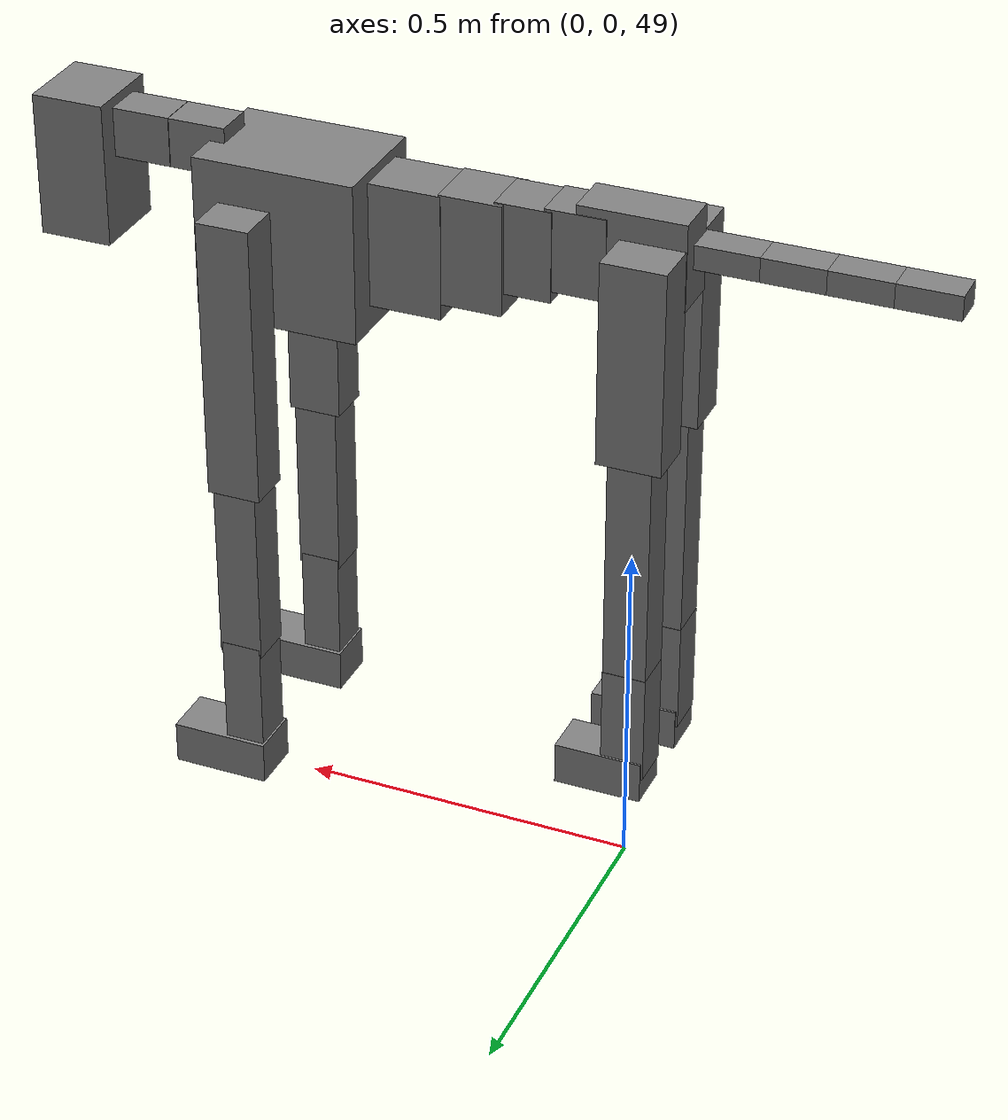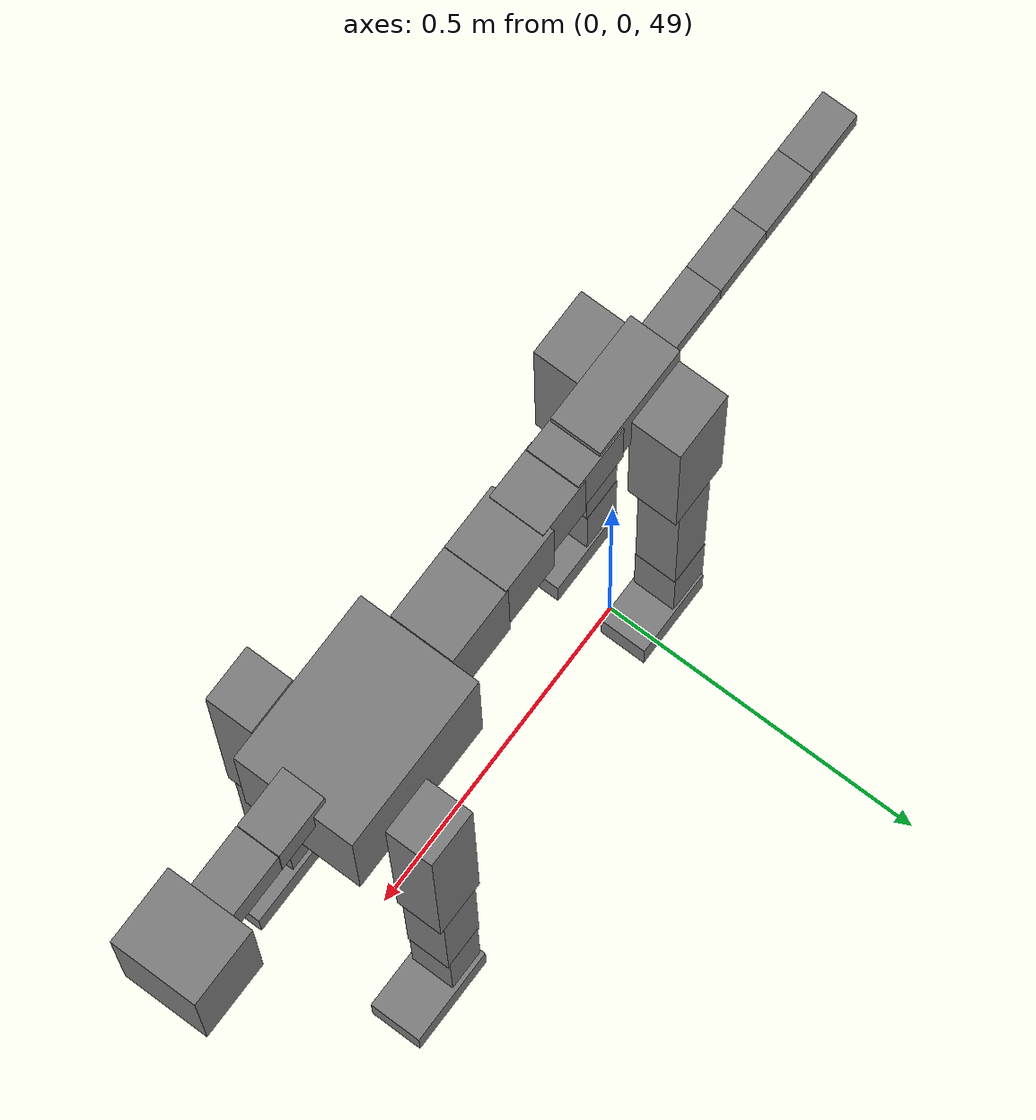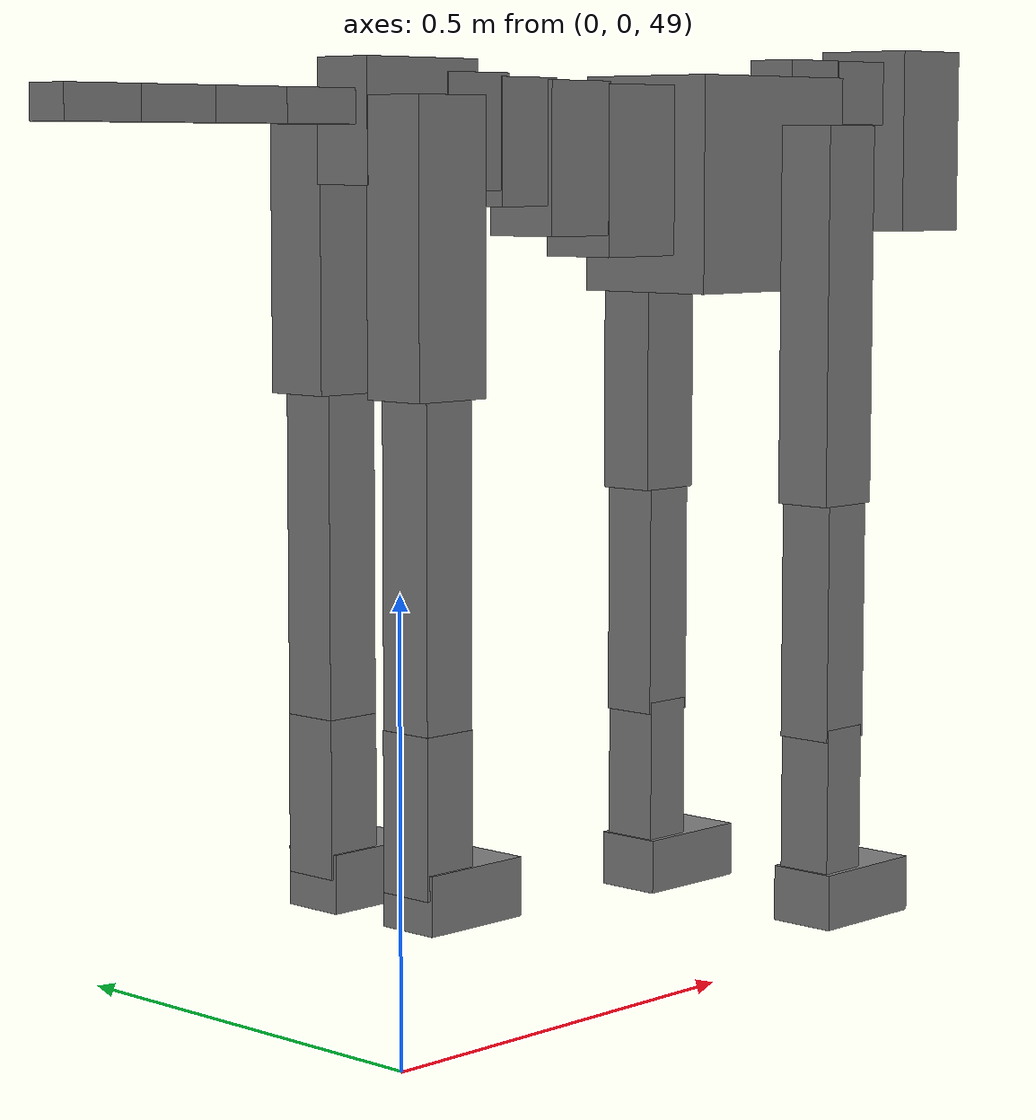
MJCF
<mujoco model="dog">

    <default>
        <joint armature="0.02" stiffness="1" damping="0.2" limited="true" />
        <geom condim="3" friction="1 0.05 0.05" margin="0.01" />
        <motor ctrllimited="true" ctrlrange="-1.0 1.0" forcelimited="true" gear="50" />
    </default>

    <compiler inertiafromgeom="true" angle="radian" />

    <option timestep="0.016" iterations="50" tolerance="1e-10" solver="Newton" jacobian="dense" cone="pyramidal" />

    <size nconmax="20000" njmax="60000" nstack="5000000" />
    <visual>
        <map force="0.1" zfar="30" />
        <rgba haze="0.15 0.25 0.35 1" />
        <quality shadowsize="2048" />
        <global offwidth="800" offheight="800" />
    </visual>

    <asset>
        <texture type="skybox" builtin="gradient" rgb1="0.3 0.5 0.7" rgb2="0 0 0" width="512" height="512" />
        <texture name="texplane" type="2d" builtin="checker" rgb1=".2 .3 .4" rgb2=".1 0.15 0.2" width="512" height="512" mark="cross" markrgb=".8 .8 .8" />
        <texture name="texgeom" type="cube" builtin="flat" mark="cross" width="127" height="1278" rgb1="0.8 0.6 0.4" rgb2="0.8 0.6 0.4" markrgb="1 1 1" random="0.01" />

        <material name="matplane" reflectance="0.3" texture="texplane" texrepeat="1 1" texuniform="true" />
        <material name="matgeom" texture="texgeom" texuniform="true" rgba="0.8 0.6 .4 1" />
    </asset>

    <worldbody>
        <geom name="floor" pos="0 0 0" size="0 0 .25" type="plane" material="matplane" condim="3" />

        <light directional="false" diffuse=".2 .2 .2" specular="0 0 0" pos="0 0 5" dir="0 0 -1" castshadow="false" />
        <light mode="targetbodycom" target="torso" directional="false" diffuse=".8 .8 .8" specular="0.3 0.3 0.3" pos="0 0 4.0" dir="0 0 -1" />

        <body name="root" pos="0 0 50">
            <freejoint name="root_1" />
            <geom type="box" pos="0 0 -0.02" size="0.0774  0.0358  0.063" density="2030" />

            <body name="spine1" pos="0.054 0 0">
                <joint name="spine1_y" axis="0 1 0" range="0 0.7" limited="true" />
                <geom type="box" pos="0.02375 0 -0.03" size="0.04375  0.0375  0.05985" density="2030" />

                <body name="spine2" pos="0.0612 0 0">
                    <joint name="spine2_y" axis="0 1 0" range="-0.15 0.15" limited="true" />
                    <geom type="box" pos="0.03555  0  -0.04" size="0.04055  0.039  0.06615" density="2030" />

                    <body name="spine3" pos="0.0730 0 0">
                        <joint name="spine3_y" axis="0 1 0" range="-0.15 0.15" limited="true" />
                        <geom type="box" pos="0.03555  0  -0.057" size="0.04555  0.0445  0.081" density="2030" />

                        <body name="spine4" pos="0.0780 0 0">
                            <joint name="spine4_y" axis="0 1 0" range="-0.15 0.15" limited="true" />
                            <geom type="box" pos="0.05265  0  -0.07" size="0.05265  0.045  0.09135" density="2030" />

                            <body name="torso" pos="0.1082 0 0">
                                <joint name="torso_y" axis="0 1 0" range="-0.15 0.15" limited="true" />
                                <geom type="box" pos="0.11925  0  -0.085" size="0.11925  0.085  0.11745" density="2030" />

                                <body name="neck1" pos="0.2160  0   0.0180">
                                    <joint name="neck1_y" axis="0 1 0" range="-1.2  -1" limited="true" />
                                    <geom type="box" pos="0.0423  0  0" size="0.0423  0.03  0.036" density="2325" />

                                    <body name="neck2" pos="0.0853  0  0">
                                        <joint name="neck2_y" axis="0 1 0" range="0.1  0" limited="true" />
                                        <geom type="box" pos="0.0423  0  0" size="0.0423  0.03  0.036" density="2325" />

                                        <body name="head" pos="0.0853  0  0">
                                            <joint name="head_y" axis="0 1 0" range="-0.3  -0.2" limited="true" />
                                            <geom type="box" pos="0.0531  0  -0.055" size="0.0531  0.06  0.1044" density="4030" />

                                        </body>
                                    </body>
                                </body>

                                <body name="front_shoulder" pos="0.156  0   -0.0480">
                                    <joint name="front_shoulder_y" axis="0 1 0" range="-1 1.5" limited="true" />
                                    <geom type="box" pos="0 0.13 -0.1810" size="0.0390  0.0333  0.2077" density="1158" />
                                    <geom type="box" pos="0 -0.13 -0.1810" size="0.0390  0.0333  0.2077" density="1158" />

                                    <body name="front_elbow" pos="0  0  -0.3620">
                                        <joint name="front_elbow_y" axis="0 1 0" range="-2 0" limited="true" />
                                        <geom type="box" pos="0 0.13 -0.1444" size="0.0317  0.0324  0.1444" density="1081" />
                                        <geom type="box" pos="0 -0.13 -0.1444" size="0.0317  0.0324  0.1444" density="1081" />

                                        <body name="front_wrist" pos="0  0  -0.2888">
                                            <joint name="front_wrist_y" axis="0 1 0" range="-0.2 0" limited="true" />
                                            <geom type="box" pos="0 0.13 -0.0819" size="0.0292  0.0325  0.0950" density="1664" />
                                            <geom type="box" pos="0 -0.13 -0.0819" size="0.0292  0.0325  0.0950" density="1664" />

                                            <body name="front_finger_end" pos="0  0  -0.1638">
                                                <joint name="front_finger_y" axis="0 1 0" range="-0.4 1" limited="true" />
                                                <geom type="box" pos="0.0388  0.13  -0.0161" size="0.0711  0.0388  0.0311" density="1515" />
                                                <geom type="box" pos="0.0388  -0.13  -0.0161" size="0.0711  0.0388  0.0311" density="1515" />

                                            </body>

                                        </body>
                                    </body>
                                </body>

                            </body>
                        </body>
                    </body>
                </body>
            </body>

            <body name="back_hip" pos="-0.03 0 -0.018">
                <joint name="back_hip_y" axis="0 1 0" range="-1.5 0.3" limited="true" />
                <geom type="box" pos="0 0.07 -0.1267" size="0.0465  0.0365  0.1495" density="1154" />
                <geom type="box" pos="0 -0.07 -0.1267" size="0.0465  0.0365  0.1495" density="1154" />

                <body name="back_knee" pos="0  0  -0.2534">
                    <joint name="back_knee_y" axis="0 1 0" range="0 2.8" limited="true" />
                    <geom type="box" pos="0 0.07 -0.1833" size="0.0316  0.0311  0.1988" density="1227" />
                    <geom type="box" pos="0 -0.07 -0.1833" size="0.0316  0.0311  0.1988" density="1227" />

                    <body name="back_ankle" pos="0  0  -0.3665">
                        <joint name="back_ankle_y" axis="0 1 0" range="-2.2 0" limited="true" />
                        <geom type="box" pos="0 0.07 -0.0716" size="0.0317  0.0317  0.0829" density="1284" />
                        <geom type="box" pos="0 -0.07 -0.0716" size="0.0317  0.0317  0.0829" density="1284" />

                        <body name="back_toe_end" pos="0  0  -0.1433">
                            <joint name="back_toe_y" axis="0 1 0" range="-0.4 1" limited="true" />
                            <geom type="box" pos="0.0350  0.07  -0.0159" size="0.0641  0.0350  0.0309" density="1515" />
                            <geom type="box" pos="0.0350  -0.07  -0.0159" size="0.0641  0.0350  0.0309" density="1515" />

                        </body>
                    </body>
                </body>
            </body>

            <body name="tail1" pos="-0.074 0 -0.006">
                <joint name="tail1_y" axis="0 1 0" range="-0.2 0.2" limited="true" />
                <geom type="box" pos="-0.0536  0  0" size="0.045  0.025  0.0175" density="1587" />

                <body name="tail2" pos="-0.09 0 0">
                    <joint name="tail2_y" axis="0 1 0" range="-0.2 0.2" limited="true" />
                    <geom type="box" pos="-0.0536  0  0" size="0.045  0.025  0.0175" density="1587" />

                    <body name="tail3" pos="-0.09 0 0">
                        <joint name="tail3_y" axis="0 1 0" range="-0.2 0.2" limited="true" />
                        <geom type="box" pos="-0.0536  0  0" size="0.045  0.025  0.0175" density="1587" />

                        <body name="tail4" pos="-0.09 0 0">
                            <joint name="tail4_y" axis="0 1 0" range="-0.2 0.2" limited="true" />
                            <geom type="box" pos="-0.0536  0  0" size="0.045  0.025  0.0175" density="1587" />

                        </body>
                    </body>
                </body>
            </body>
        </body>
    </worldbody>

    <actuator>
        <motor joint="spine1_y" forcerange="-150 150     " />
        <motor joint="spine2_y" forcerange="-150 150     " />
        <motor joint="spine3_y" forcerange="-150 150     " />
        <motor joint="spine4_y" forcerange="-150 150     " />
        <motor joint="torso_y" forcerange="-150 150     " />
        <motor joint="neck1_y" forcerange="-100 100       " />
        <motor joint="neck2_y" forcerange="-100 100       " />
        <motor joint="head_y" forcerange="-150 150       " />
        <motor joint="front_shoulder_y" forcerange="-151.53 170.58" />
        <motor joint="front_elbow_y" forcerange="-161.22 174.47" />
        <motor joint="front_wrist_y" forcerange="-147.68 112.18" />
        <motor joint="front_finger_y" forcerange="-83.29 83.55" />
        <motor joint="back_hip_y" forcerange="-310.75 375.32" />
        <motor joint="back_knee_y" forcerange="-328.75 323.58" />
        <motor joint="back_angle_y" forcerange="-195.67 212.05" />
        <motor joint="back_toe_y" forcerange="-81.26 118.38" />
        <motor joint="tail1_y" forcerange="-50 50     " />
        <motor joint="tail2_y" forcerange="-50 50     " />
        <motor joint="tail3_y" forcerange="-50 50     " />
        <motor joint="tail4_y" forcerange="-50 50     " />
    </actuator>
</mujoco>
